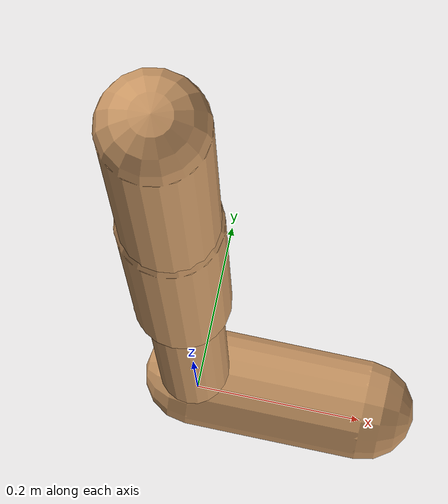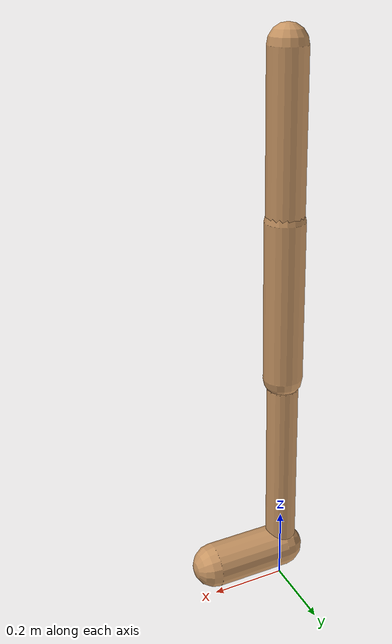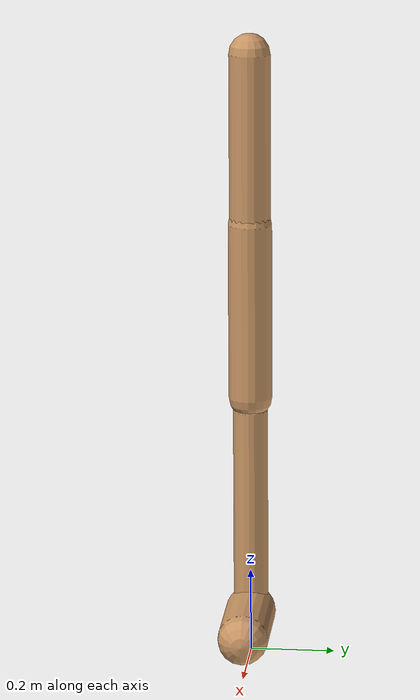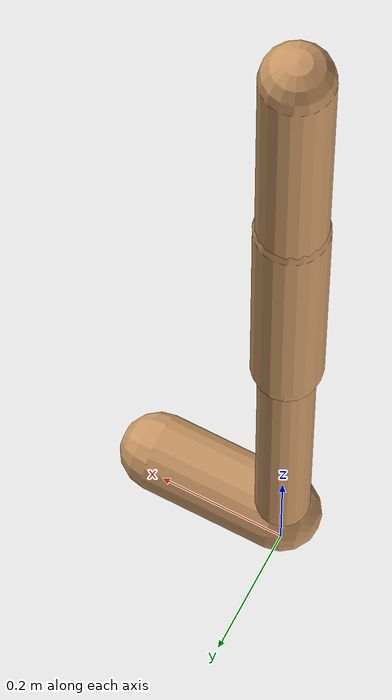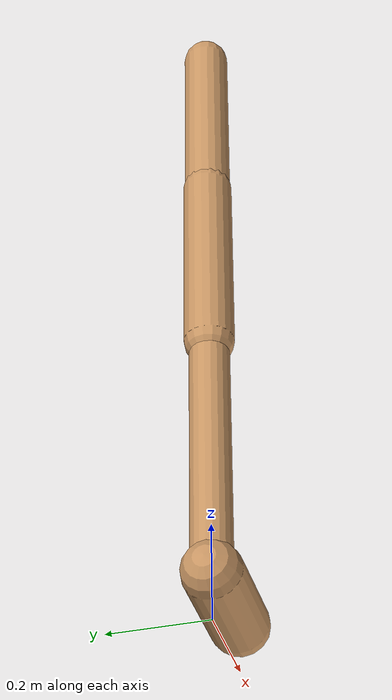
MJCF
<mujoco model="walker2d">
  <compiler angle="degree" coordinate="global" inertiafromgeom="true" />
  <default>
    <joint armature="0.01" damping=".1" limited="true" />
    <geom conaffinity="0" condim="3" contype="1" density="1000" friction="0.8 .1 .1" rgba="0.8 0.6 .4 1" />
  </default>
  <option integrator="RK4" timestep="0.002" />
  <worldbody>

    <body name="torso" pos="0 0 -0.06873202981515131">
      <joint armature="0" axis="1 0 0" damping="0" limited="false" name="ignorex" pos="0 0 0" stiffness="0" type="slide" />
      <joint armature="0" axis="0 0 1" damping="0" limited="false" name="ignorez" pos="0 0 0" ref="1.25" stiffness="0" type="slide" />
      <joint armature="0" axis="0 1 0" damping="0" limited="false" name="ignorey" pos="0 0 0" stiffness="0" type="hinge" />
      <geom fromto="0 0 1.45 0 0 1.05" name="torso_geom" size="0.048191307121483014" type="capsule" />
      <body name="thigh">
        <joint axis="0 -1 0" name="thigh_joint" pos="0 0 1.05" range="-150 0" type="hinge" />
        <geom fromto="0.0 0.0 1.05 0.0 0.0 0.6325572772808611" name="thigh_geom" size="0.05117790920032901" type="capsule" />
        <body name="leg" pos="0.0 0.0 0.03255727728086111">
          <joint axis="0 -1 0" name="leg_joint" pos="0 0 0.6" range="-150 0" type="hinge" />
          <geom fromto="0.0 0.0 0.6 0.0 0.0 0.13617475253429018" name="leg_geom" size="0.04094232736026321" type="capsule" />
          <body name="foot" pos="0.0 0.0 0.03617475253429017">
            <joint axis="0 -1 0" name="foot_joint" pos="0 0 0.1" range="-45 45" type="hinge" />
            <geom fromto="-0.0 0.0 0.1 0.20378379856957146 0.0 0.1" name="foot_geom" size="0.05925834008090686" type="capsule" />
          </body>
        </body>
      </body>

      <body name="thigh_left">
        <joint axis="0 -1 0" name="thigh_left_joint" pos="0 0 1.05" range="-150 0" type="hinge" />
        <geom fromto="0.0 0.0 1.05 0.0 0.0 0.6325572772808611" name="thigh_left_geom" rgba=".7 .3 .6 1" size="0.05117790920032901" type="capsule" />
        <body name="leg_left" pos="0.0 0.0 0.03255727728086111">
          <joint axis="0 -1 0" name="leg_left_joint" pos="0 0 0.6" range="-150 0" type="hinge" />
          <geom fromto="0.0 0.0 0.6 0.0 0.0 0.13617475253429018" name="leg_left_geom" rgba=".7 .3 .6 1" size="0.04094232736026321" type="capsule" />
          <body name="foot_left" pos="0.0 0.0 0.03617475253429017">
            <joint axis="0 -1 0" name="foot_left_joint" pos="0 0 0.1" range="-45 45" type="hinge" />
            <geom fromto="-0.0 0.0 0.1 0.20378379856957146 0.0 0.1" name="foot_left_geom" rgba=".7 .3 .6 1" size="0.05925834008090686" type="capsule" />
          </body>
        </body>
      </body>
    </body>
  </worldbody>
  <actuator>

    <motor ctrllimited="true" ctrlrange="-1.0 1.0" gear="100" joint="thigh_joint" />
    <motor ctrllimited="true" ctrlrange="-1.0 1.0" gear="100" joint="leg_joint" />
    <motor ctrllimited="true" ctrlrange="-1.0 1.0" gear="100" joint="foot_joint" />
    <motor ctrllimited="true" ctrlrange="-1.0 1.0" gear="100" joint="thigh_left_joint" />
    <motor ctrllimited="true" ctrlrange="-1.0 1.0" gear="100" joint="leg_left_joint" />
    <motor ctrllimited="true" ctrlrange="-1.0 1.0" gear="100" joint="foot_left_joint" />

  </actuator>
</mujoco>
